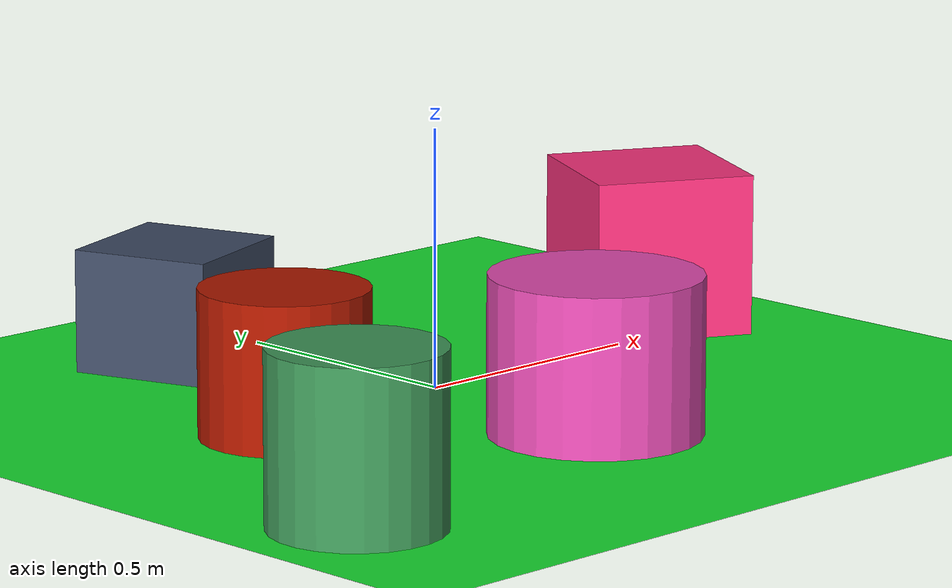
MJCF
<mujoco>
   <asset>
<texture type="skybox" builtin="gradient" rgb1="0.2 0.4 0.9" rgb2="0.5 0.2 0.9" width="256" height="256"/>
<texture name="flat_0" builtin="flat" rgb1="0.9 0.3 0.7" rgb2="0.9 0.3 0.7"  width="200" height="200"/>
<texture name="flat_1" builtin="flat" rgb1="0.7 0.1 0.0" rgb2="0.7 0.1 0.0"  width="200" height="200"/>
<texture name="gradient_2" builtin="gradient" rgb1="0.2 0.4 0.2" rgb2="0.3 0.2 0.6" width="200" height="200"/>
<texture name="checker_3" builtin="checker" rgb1="0.3 0.8 0.1" rgb2="0.2 0.4 0.6" width="200" height="200"/>
<texture name="flat_4" builtin="flat" rgb1="1.0 0.2 0.5" rgb2="1.0 0.2 0.5"  width="200" height="200"/><material name="flat_0_mat" reflectance="0" texture="flat_0" texuniform="true"/>
<material name="flat_1_mat" reflectance="0" texture="flat_1" texuniform="true"/>
<material name="gradient_2_mat" reflectance="0" texture="gradient_2" texuniform="true"/>
<material name="checker_3_mat" reflectance="0" texrepeat="7 7" texture="checker_3" texuniform="false" />
<material name="flat_4_mat" reflectance="0" texture="flat_4" texuniform="true"/>
   </asset>

   <worldbody>
      <light diffuse=".9 .9 .9" pos="0 0 3" dir="0 0 -1"/>
     <geom type="plane" size="1 1 0.1" rgba="0.1 0.9 0.2 1"/>
<geom type="cylinder" pos="-0.03 -0.45 0.15" size="0.2 0.15 0.15" material="flat_0_mat" euler="0 0 27" />
<geom type="cylinder" pos="-0.45 -0.07 0.14" size="0.16 0.14 0.14" material="flat_1_mat" euler="0 0 79" />
<geom type="box" pos="-0.23 0.48 0.12" size="0.14 0.14 0.12" material="gradient_2_mat" euler="0 0 19" />
<geom type="cylinder" pos="-0.78 -0.61 0.16" size="0.16 0.16 0.16" material="checker_3_mat" euler="0 0 51" />
<geom type="box" pos="0.68 0.09 0.16" size="0.16 0.16 0.16" material="flat_4_mat" euler="0 0 63" /><camera euler="60 0 180" fovy="60" name="camera1" pos="-0.2 -1.5 1"></camera>   </worldbody>
</mujoco>
